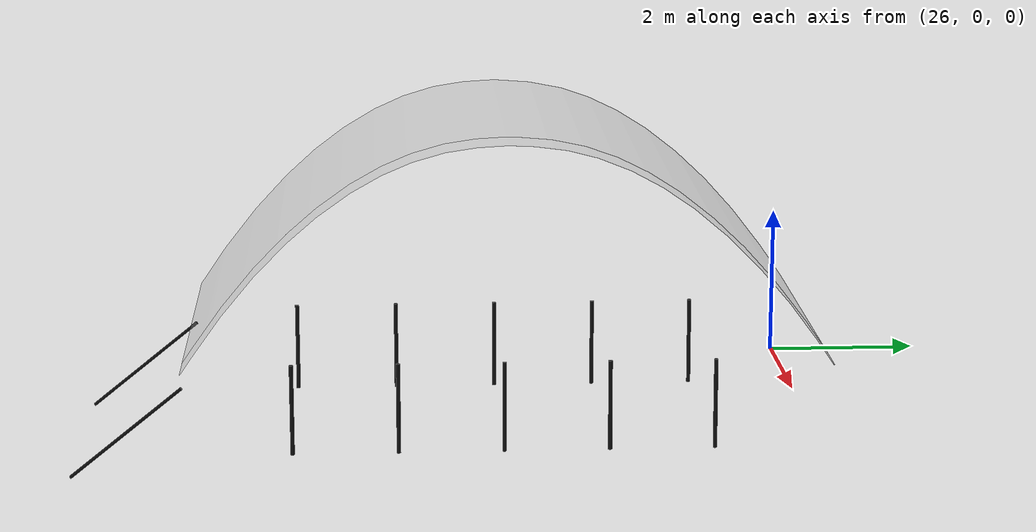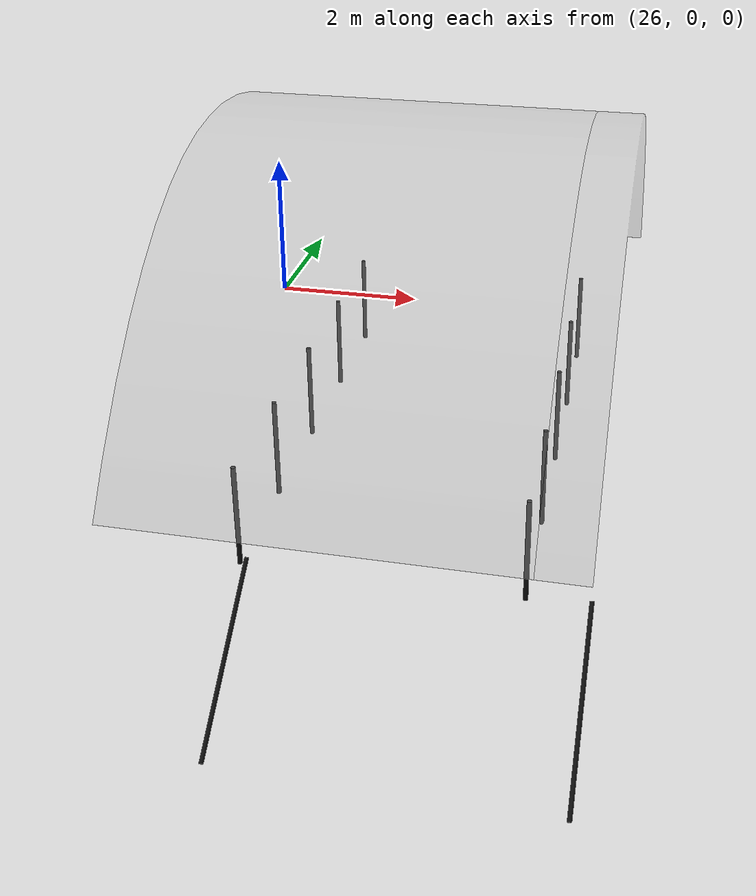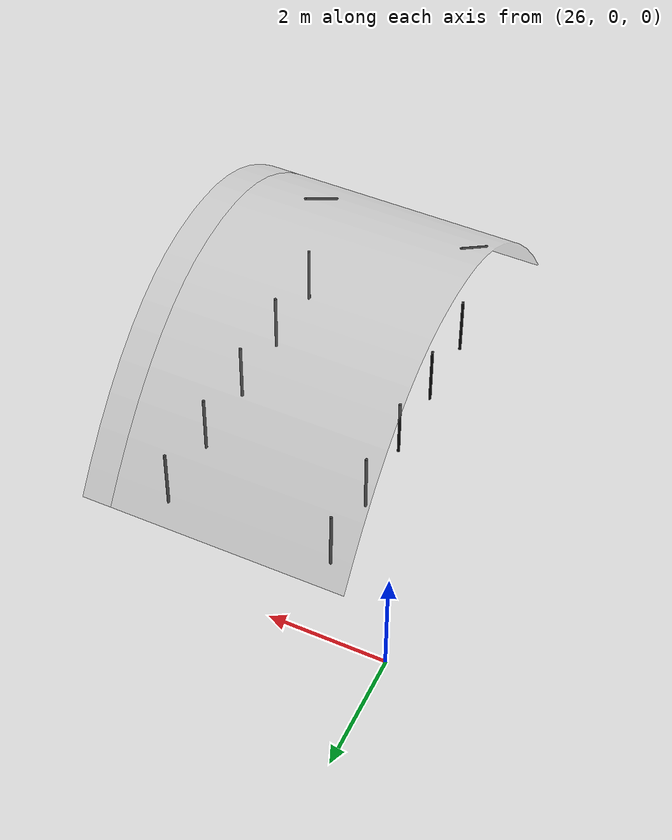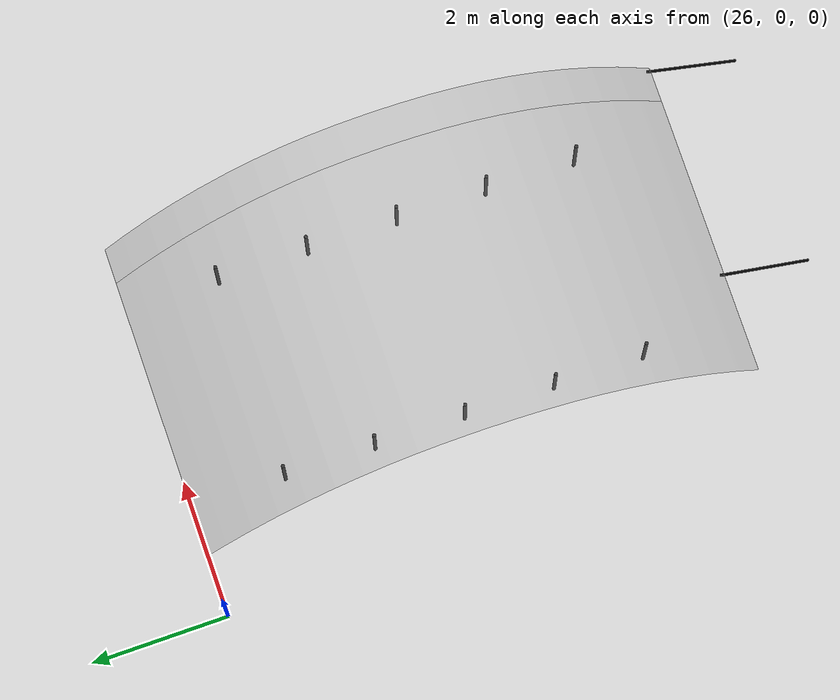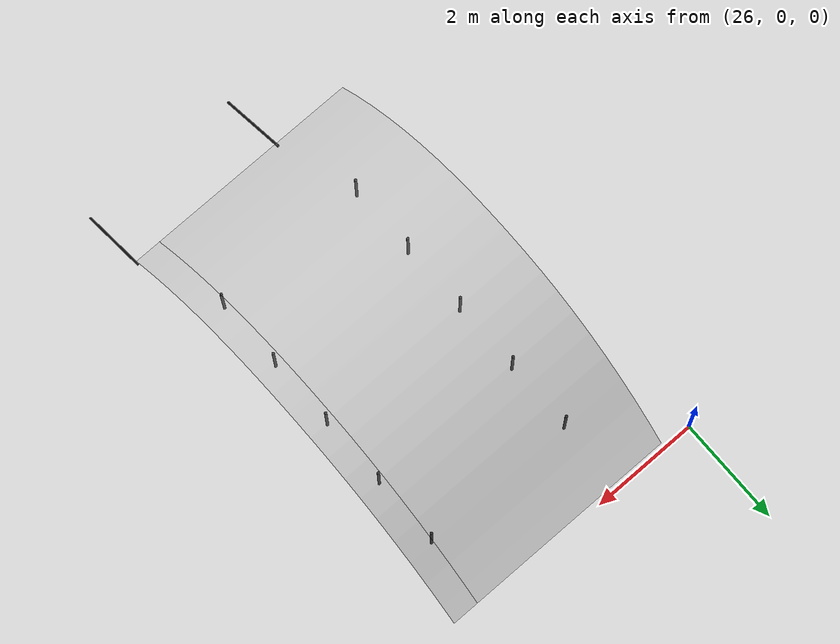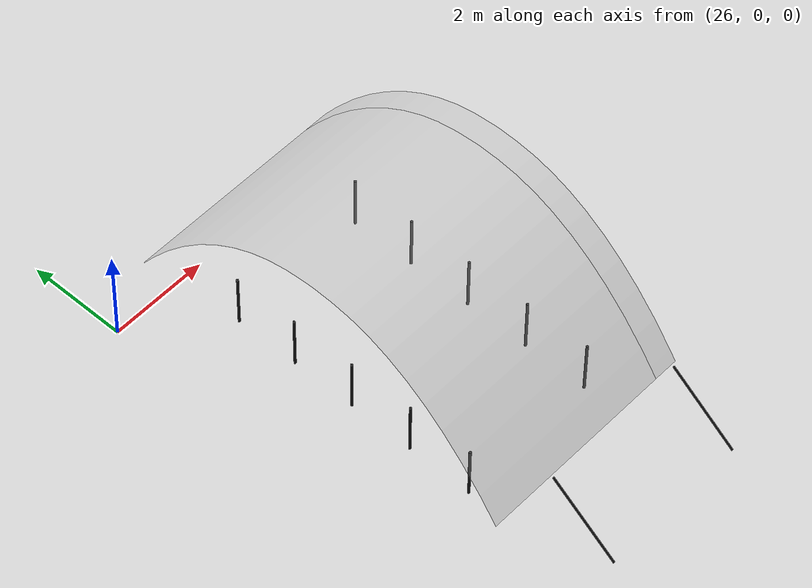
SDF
<sdf version="1.4">
 <world name="default">
  <model name="pole_35">
   <static>1</static>
   <pose>27.580 -6.640 0.575 0.0 0.0 0.0</pose>
   <link name="link">
    <collision name="collision">
     <geometry><cylinder><length>1.15</length><radius>0.025</radius></cylinder></geometry>
    </collision>
    <visual name="visual">
     <geometry><cylinder><length>1.15</length><radius>0.025</radius></cylinder></geometry>
     <material>
      <script><uri>file://media/materials/scripts/gazebo.material</uri><name>Gazebo/Chrome</name></script>
      <shader type="vertex"><normal_map>__default__</normal_map></shader>
      <emissive>0.1 0.1 0.1 1</emissive>
      <specular>0.01 0.01 0.01 1</specular>
      <ambient>0.5 0.5 0.5 1</ambient>
      <diffuse>0.05 0.05 0.05 1</diffuse>
     </material>
    </visual>
   </link>
  </model>
  <model name="pole_36">
   <static>1</static>
   <pose>27.580 -5.320 0.575 0.0 0.0 0.0</pose>
   <link name="link">
    <collision name="collision">
     <geometry><cylinder><length>1.15</length><radius>0.025</radius></cylinder></geometry>
    </collision>
    <visual name="visual">
     <geometry><cylinder><length>1.15</length><radius>0.025</radius></cylinder></geometry>
     <material>
      <script><uri>file://media/materials/scripts/gazebo.material</uri><name>Gazebo/Chrome</name></script>
      <shader type="vertex"><normal_map>__default__</normal_map></shader>
      <emissive>0.1 0.1 0.1 1</emissive>
      <specular>0.01 0.01 0.01 1</specular>
      <ambient>0.5 0.5 0.5 1</ambient>
      <diffuse>0.05 0.05 0.05 1</diffuse>
     </material>
    </visual>
   </link>
  </model>
  <model name="pole_37">
   <static>1</static>
   <pose>27.580 -4.000 0.575 0.0 0.0 0.0</pose>
   <link name="link">
    <collision name="collision">
     <geometry><cylinder><length>1.15</length><radius>0.025</radius></cylinder></geometry>
    </collision>
    <visual name="visual">
     <geometry><cylinder><length>1.15</length><radius>0.025</radius></cylinder></geometry>
     <material>
      <script><uri>file://media/materials/scripts/gazebo.material</uri><name>Gazebo/Chrome</name></script>
      <shader type="vertex"><normal_map>__default__</normal_map></shader>
      <emissive>0.1 0.1 0.1 1</emissive>
      <specular>0.01 0.01 0.01 1</specular>
      <ambient>0.5 0.5 0.5 1</ambient>
      <diffuse>0.05 0.05 0.05 1</diffuse>
     </material>
    </visual>
   </link>
  </model>
  <model name="pole_38">
   <static>1</static>
   <pose>27.580 -2.680 0.575 0.0 0.0 0.0</pose>
   <link name="link">
    <collision name="collision">
     <geometry><cylinder><length>1.15</length><radius>0.025</radius></cylinder></geometry>
    </collision>
    <visual name="visual">
     <geometry><cylinder><length>1.15</length><radius>0.025</radius></cylinder></geometry>
     <material>
      <script><uri>file://media/materials/scripts/gazebo.material</uri><name>Gazebo/Chrome</name></script>
      <shader type="vertex"><normal_map>__default__</normal_map></shader>
      <emissive>0.1 0.1 0.1 1</emissive>
      <specular>0.01 0.01 0.01 1</specular>
      <ambient>0.5 0.5 0.5 1</ambient>
      <diffuse>0.05 0.05 0.05 1</diffuse>
     </material>
    </visual>
   </link>
  </model>
  <model name="pole_39">
   <static>1</static>
   <pose>27.580 -1.360 0.575 0.0 0.0 0.0</pose>
   <link name="link">
    <collision name="collision">
     <geometry><cylinder><length>1.15</length><radius>0.025</radius></cylinder></geometry>
    </collision>
    <visual name="visual">
     <geometry><cylinder><length>1.15</length><radius>0.025</radius></cylinder></geometry>
     <material>
      <script><uri>file://media/materials/scripts/gazebo.material</uri><name>Gazebo/Chrome</name></script>
      <shader type="vertex"><normal_map>__default__</normal_map></shader>
      <emissive>0.1 0.1 0.1 1</emissive>
      <specular>0.01 0.01 0.01 1</specular>
      <ambient>0.5 0.5 0.5 1</ambient>
      <diffuse>0.05 0.05 0.05 1</diffuse>
     </material>
    </visual>
   </link>
  </model>
  <model name="pole_40">
   <static>1</static>
   <pose>30.520 -6.640 0.575 0.0 0.0 0.0</pose>
   <link name="link">
    <collision name="collision">
     <geometry><cylinder><length>1.15</length><radius>0.025</radius></cylinder></geometry>
    </collision>
    <visual name="visual">
     <geometry><cylinder><length>1.15</length><radius>0.025</radius></cylinder></geometry>
     <material>
      <script><uri>file://media/materials/scripts/gazebo.material</uri><name>Gazebo/Chrome</name></script>
      <shader type="vertex"><normal_map>__default__</normal_map></shader>
      <emissive>0.1 0.1 0.1 1</emissive>
      <specular>0.01 0.01 0.01 1</specular>
      <ambient>0.5 0.5 0.5 1</ambient>
      <diffuse>0.05 0.05 0.05 1</diffuse>
     </material>
    </visual>
   </link>
  </model>
  <model name="pole_41">
   <static>1</static>
   <pose>30.520 -5.320 0.575 0.0 0.0 0.0</pose>
   <link name="link">
    <collision name="collision">
     <geometry><cylinder><length>1.15</length><radius>0.025</radius></cylinder></geometry>
    </collision>
    <visual name="visual">
     <geometry><cylinder><length>1.15</length><radius>0.025</radius></cylinder></geometry>
     <material>
      <script><uri>file://media/materials/scripts/gazebo.material</uri><name>Gazebo/Chrome</name></script>
      <shader type="vertex"><normal_map>__default__</normal_map></shader>
      <emissive>0.1 0.1 0.1 1</emissive>
      <specular>0.01 0.01 0.01 1</specular>
      <ambient>0.5 0.5 0.5 1</ambient>
      <diffuse>0.05 0.05 0.05 1</diffuse>
     </material>
    </visual>
   </link>
  </model>
  <model name="pole_42">
   <static>1</static>
   <pose>30.520 -4.000 0.575 0.0 0.0 0.0</pose>
   <link name="link">
    <collision name="collision">
     <geometry><cylinder><length>1.15</length><radius>0.025</radius></cylinder></geometry>
    </collision>
    <visual name="visual">
     <geometry><cylinder><length>1.15</length><radius>0.025</radius></cylinder></geometry>
     <material>
      <script><uri>file://media/materials/scripts/gazebo.material</uri><name>Gazebo/Chrome</name></script>
      <shader type="vertex"><normal_map>__default__</normal_map></shader>
      <emissive>0.1 0.1 0.1 1</emissive>
      <specular>0.01 0.01 0.01 1</specular>
      <ambient>0.5 0.5 0.5 1</ambient>
      <diffuse>0.05 0.05 0.05 1</diffuse>
     </material>
    </visual>
   </link>
  </model>
  <model name="pole_43">
   <static>1</static>
   <pose>30.520 -2.680 0.575 0.0 0.0 0.0</pose>
   <link name="link">
    <collision name="collision">
     <geometry><cylinder><length>1.15</length><radius>0.025</radius></cylinder></geometry>
    </collision>
    <visual name="visual">
     <geometry><cylinder><length>1.15</length><radius>0.025</radius></cylinder></geometry>
     <material>
      <script><uri>file://media/materials/scripts/gazebo.material</uri><name>Gazebo/Chrome</name></script>
      <shader type="vertex"><normal_map>__default__</normal_map></shader>
      <emissive>0.1 0.1 0.1 1</emissive>
      <specular>0.01 0.01 0.01 1</specular>
      <ambient>0.5 0.5 0.5 1</ambient>
      <diffuse>0.05 0.05 0.05 1</diffuse>
     </material>
    </visual>
   </link>
  </model>
  <model name="pole_44">
   <static>1</static>
   <pose>30.520 -1.360 0.575 0.0 0.0 0.0</pose>
   <link name="link">
    <collision name="collision">
     <geometry><cylinder><length>1.15</length><radius>0.025</radius></cylinder></geometry>
    </collision>
    <visual name="visual">
     <geometry><cylinder><length>1.15</length><radius>0.025</radius></cylinder></geometry>
     <material>
      <script><uri>file://media/materials/scripts/gazebo.material</uri><name>Gazebo/Chrome</name></script>
      <shader type="vertex"><normal_map>__default__</normal_map></shader>
      <emissive>0.1 0.1 0.1 1</emissive>
      <specular>0.01 0.01 0.01 1</specular>
      <ambient>0.5 0.5 0.5 1</ambient>
      <diffuse>0.05 0.05 0.05 1</diffuse>
     </material>
    </visual>
   </link>
  </model>
  <model name="canopy4m_0">
   <static>1</static>
   <pose>26.720 -7.960 -0.00 1.5707 0.0 1.5707</pose>
   <link name="link">
    <collision name="collision">
     <geometry><mesh><uri>model://canopy4m/canopy4m.stl</uri></mesh></geometry>
    </collision>
    <visual name="visual">
     <geometry><mesh><uri>model://canopy4m/canopy4m.stl</uri></mesh></geometry>
     <transparency>0.65</transparency>
    </visual>
   </link>
  </model>
  <model name="canopyhalfm_0">
   <static>1</static>
   <pose>30.720 -7.960 -0.00 1.5707 0.0 1.5707</pose>
   <link name="link">
    <collision name="collision">
     <geometry><mesh><uri>model://canopyhalfm/canopyhalfm.stl</uri></mesh></geometry>
    </collision>
    <visual name="visual">
     <geometry><mesh><uri>model://canopyhalfm/canopyhalfm.stl</uri></mesh></geometry>
     <transparency>0.65</transparency>
    </visual>
   </link>
  </model>
  <model name="strut_7">
   <static>1</static>
   <pose>28.160 -8.623 0.536 -0.896 0.0 0.0</pose>
   <link name="link">
    <collision name="collision">
     <geometry><cylinder><length>1.76</length><radius>0.02</radius></cylinder></geometry>
    </collision>
    <visual name="visual">
     <geometry><cylinder><length>1.76</length><radius>0.02</radius></cylinder></geometry>
     <material>
      <script><uri>file://media/materials/scripts/gazebo.material</uri><name>Gazebo/Chrome</name></script>
      <shader type="vertex"><normal_map>__default__</normal_map></shader>
      <emissive>0.1 0.1 0.1 1</emissive>
      <specular>0.01 0.01 0.01 1</specular>
      <ambient>0.5 0.5 0.5 1</ambient>
      <diffuse>0.05 0.05 0.05 1</diffuse>
     </material>
    </visual>
   </link>
  </model>
  <model name="strut_8">
   <static>1</static>
   <pose>31.220 -8.623 0.536 -0.896 0.0 0.0</pose>
   <link name="link">
    <collision name="collision">
     <geometry><cylinder><length>1.76</length><radius>0.02</radius></cylinder></geometry>
    </collision>
    <visual name="visual">
     <geometry><cylinder><length>1.76</length><radius>0.02</radius></cylinder></geometry>
     <material>
      <script><uri>file://media/materials/scripts/gazebo.material</uri><name>Gazebo/Chrome</name></script>
      <shader type="vertex"><normal_map>__default__</normal_map></shader>
      <emissive>0.1 0.1 0.1 1</emissive>
      <specular>0.01 0.01 0.01 1</specular>
      <ambient>0.5 0.5 0.5 1</ambient>
      <diffuse>0.05 0.05 0.05 1</diffuse>
     </material>
    </visual>
   </link>
  </model>
  <include><uri>model://sun</uri></include>
 </world>
</sdf>
